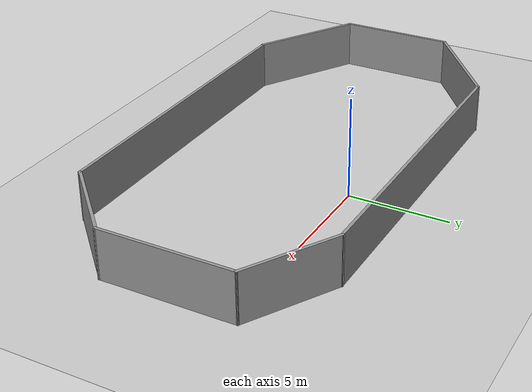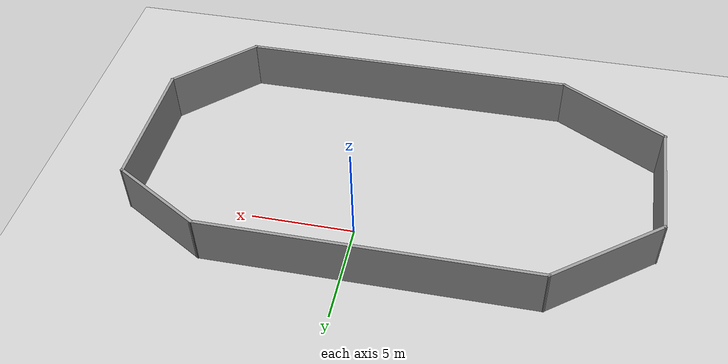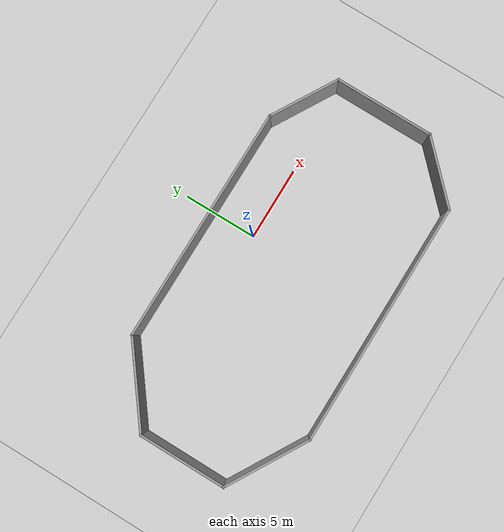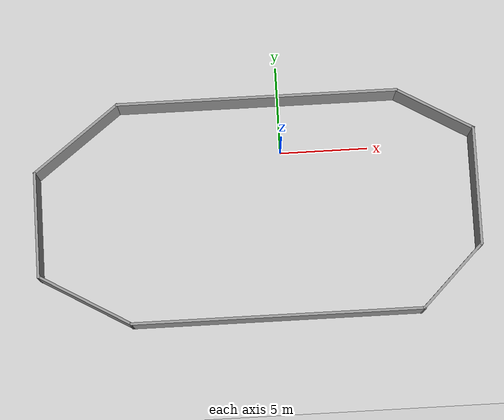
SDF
<sdf version="1.7">
 <world name="default">
  <light name="sun" type="directional">
   <pose>0 0 10 0 -0 0</pose>
   <diffuse>0.8 0.8 0.8 1</diffuse>
   <specular>0.2 0.2 0.2 1</specular>
   <attenuation>
    <range>1000</range>
    <constant>0.9</constant>
    <linear>0.01</linear>
    <quadratic>0.001</quadratic>
   </attenuation>
   <direction>-0.5 0.1 -0.9</direction>
   <spot><inner_angle>0</inner_angle><outer_angle>0</outer_angle><falloff>0</falloff></spot>
  </light>
  <model name="ground_plane">
   <static>1</static>
   <link name="link">
    <collision name="collision">
     <geometry><plane><normal>0 0 1</normal><size>100 100</size></plane></geometry>
     <surface>
      <contact><collide_bitmask>65535</collide_bitmask></contact>
      <friction><ode><mu>100</mu><mu2>50</mu2></ode></friction>
     </surface>
    </collision>
    <visual name="visual">
     <cast_shadows>0</cast_shadows>
     <geometry><plane><normal>0 0 1</normal><size>100 100</size></plane></geometry>
     <material>
      <script><uri>file://media/materials/scripts/gazebo.material</uri><name>Gazebo/Grey</name></script>
     </material>
    </visual>
   </link>
  </model>
  <gravity>0 0 -9.8</gravity>
  <magnetic_field>6e-06 2.3e-05 -4.2e-05</magnetic_field>
  <atmosphere type="adiabatic"/>
  <physics type="ode">
   <max_step_size>0.001</max_step_size>
   <real_time_factor>1</real_time_factor>
   <real_time_update_rate>1000</real_time_update_rate>
  </physics>
  <scene><ambient>0.4 0.4 0.4 1</ambient><background>0.7 0.7 0.7 1</background><shadows>1</shadows></scene>
  <spherical_coordinates>
   <surface_model>EARTH_WGS84</surface_model>
   <latitude_deg>0</latitude_deg>
   <longitude_deg>0</longitude_deg>
   <elevation>0</elevation>
   <heading_deg>0</heading_deg>
  </spherical_coordinates>
  <model name="Untitled">
   <pose>-1.51993 -3.37484 0 0 -0 0</pose>
   <link name="Wall_10">
    <collision name="Wall_10_Collision">
     <geometry><box><size>6 0.15 2.5</size></box></geometry>
     <pose>0 0 1.25 0 -0 0</pose>
    </collision>
    <visual name="Wall_10_Visual">
     <pose>0 0 1.25 0 -0 0</pose>
     <geometry><box><size>6 0.15 2.5</size></box></geometry>
     <material>
      <script><uri>file://media/materials/scripts/gazebo.material</uri><name>Gazebo/Grey</name></script>
      <ambient>1 1 1 1</ambient>
     </material>
     <meta><layer>0</layer></meta>
    </visual>
    <pose>-12.4233 -0.37678 0 0 -0 1.5708</pose>
   </link>
   <link name="Wall_11">
    <collision name="Wall_11_Collision">
     <geometry><box><size>6.19444 0.15 2.5</size></box></geometry>
     <pose>0 0 1.25 0 -0 0</pose>
    </collision>
    <visual name="Wall_11_Visual">
     <pose>0 0 1.25 0 -0 0</pose>
     <geometry><box><size>6.19444 0.15 2.5</size></box></geometry>
     <material>
      <script><uri>file://media/materials/scripts/gazebo.material</uri><name>Gazebo/Grey</name></script>
      <ambient>1 1 1 1</ambient>
     </material>
     <meta><layer>0</layer></meta>
    </visual>
    <pose>-10.0256 4.38795 0 0 -0 0.654466</pose>
   </link>
   <link name="Wall_4">
    <collision name="Wall_4_Collision">
     <geometry><box><size>16 0.15 2.5</size></box></geometry>
     <pose>0 0 1.25 0 -0 0</pose>
    </collision>
    <visual name="Wall_4_Visual">
     <pose>0 0 1.25 0 -0 0</pose>
     <geometry><box><size>16 0.15 2.5</size></box></geometry>
     <material>
      <script><uri>file://media/materials/scripts/gazebo.material</uri><name>Gazebo/Grey</name></script>
      <ambient>1 1 1 1</ambient>
     </material>
     <meta><layer>0</layer></meta>
    </visual>
    <pose>0.297181 6.22769 0 0 -0 0</pose>
   </link>
   <link name="Wall_5">
    <collision name="Wall_5_Collision">
     <geometry><box><size>5 0.15 2.5</size></box></geometry>
     <pose>0 0 1.25 0 -0 0</pose>
    </collision>
    <visual name="Wall_5_Visual">
     <pose>0 0 1.25 0 -0 0</pose>
     <geometry><box><size>5 0.15 2.5</size></box></geometry>
     <material>
      <script><uri>file://media/materials/scripts/gazebo.material</uri><name>Gazebo/Grey</name></script>
      <ambient>1 1 1 1</ambient>
     </material>
     <meta><layer>0</layer></meta>
    </visual>
    <pose>10.3223 5.01519 0 0 -0 -0.523599</pose>
   </link>
   <link name="Wall_6">
    <collision name="Wall_6_Collision">
     <geometry><box><size>6.75 0.15 2.5</size></box></geometry>
     <pose>0 0 1.25 0 -0 0</pose>
    </collision>
    <visual name="Wall_6_Visual">
     <pose>0 0 1.25 0 -0 0</pose>
     <geometry><box><size>6.75 0.15 2.5</size></box></geometry>
     <material>
      <script><uri>file://media/materials/scripts/gazebo.material</uri><name>Gazebo/Grey</name></script>
      <ambient>1 1 1 1</ambient>
     </material>
     <meta><layer>0</layer></meta>
    </visual>
    <pose>12.4224 0.502688 0 0 -0 -1.5708</pose>
   </link>
   <link name="Wall_7">
    <collision name="Wall_7_Collision">
     <geometry><box><size>5 0.15 2.5</size></box></geometry>
     <pose>0 0 1.25 0 -0 0</pose>
    </collision>
    <visual name="Wall_7_Visual">
     <pose>0 0 1.25 0 -0 0</pose>
     <geometry><box><size>5 0.15 2.5</size></box></geometry>
     <material>
      <script><uri>file://media/materials/scripts/gazebo.material</uri><name>Gazebo/Grey</name></script>
      <ambient>1 1 1 1</ambient>
     </material>
     <meta><layer>0</layer></meta>
    </visual>
    <pose>10.7077 -4.51205 0 0 -0 -2.35619</pose>
   </link>
   <link name="Wall_8">
    <collision name="Wall_8_Collision">
     <geometry><box><size>16.5 0.15 2.5</size></box></geometry>
     <pose>0 0 1.25 0 -0 0</pose>
    </collision>
    <visual name="Wall_8_Visual">
     <pose>0 0 1.25 0 -0 0</pose>
     <geometry><box><size>16.5 0.15 2.5</size></box></geometry>
     <material>
      <script><uri>file://media/materials/scripts/gazebo.material</uri><name>Gazebo/Grey</name></script>
      <ambient>1 1 1 1</ambient>
     </material>
     <meta><layer>0</layer></meta>
    </visual>
    <pose>0.817936 -6.22678 0 0 -0 3.14159</pose>
   </link>
   <link name="Wall_9">
    <collision name="Wall_9_Collision">
     <geometry><box><size>6 0.15 2.5</size></box></geometry>
     <pose>0 0 1.25 0 -0 0</pose>
    </collision>
    <visual name="Wall_9_Visual">
     <pose>0 0 1.25 0 -0 0</pose>
     <geometry><box><size>6 0.15 2.5</size></box></geometry>
     <material>
      <script><uri>file://media/materials/scripts/gazebo.material</uri><name>Gazebo/Grey</name></script>
      <ambient>1 1 1 1</ambient>
     </material>
     <meta><layer>0</layer></meta>
    </visual>
    <pose>-9.89019 -4.76428 0 0 -0 2.61799</pose>
   </link>
   <static>1</static>
  </model>
 </world>
</sdf>
